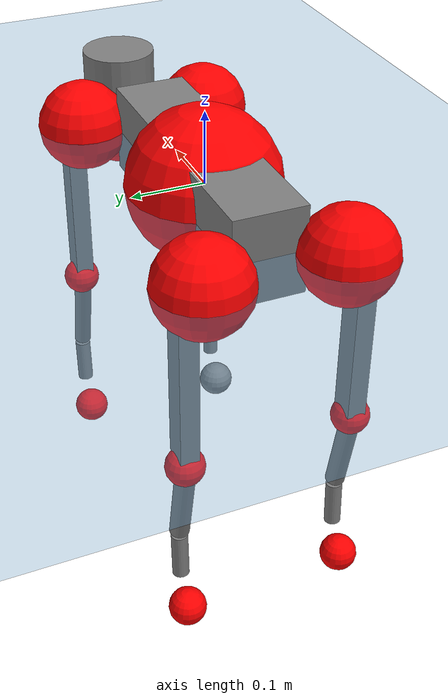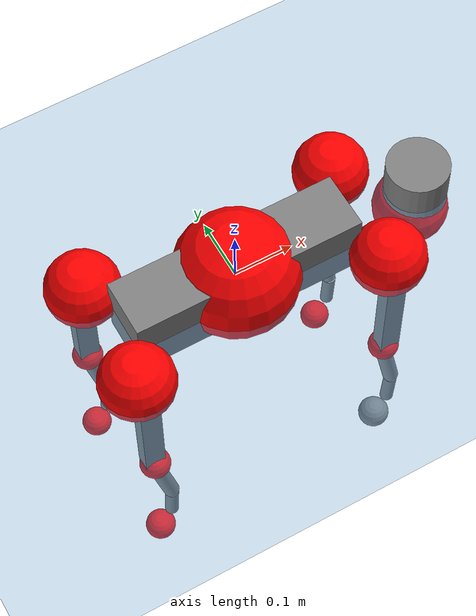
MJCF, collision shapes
<mujoco model="go2">
  <compiler angle="radian" assetdir="assets" balanceinertia="true" inertiafromgeom="false"/>

  <option timestep="0.005" density="1.2" viscosity="2e-05"/>

  <size nkey="1"/>

  <visual>
    <quality shadowsize="8192"/>
    <map shadowclip="0.5"/>
  </visual>

  <default>
    <default class="/">
      <geom contype="0" conaffinity="0" group="1" solref="-1000 -80"/>
      <site size="0.01 0.005 0.005" group="5"/>
      <general forcelimited="true" biastype="affine" gainprm="20" biasprm="0 -20 -0.5"/>
      <default class="go2">
        <joint armature="0.01" damping="0.01" frictionloss="0.2"/>
        <geom condim="1" margin="0.001"/>
        <default class="visual">
          <geom type="mesh" group="2"/>
        </default>
        <default class="collision">
          <geom group="3"/>
          <default class="foot">
            <geom size="0.022 0 0" condim="6" priority="1" friction="0.8 0.02 0.01" solimp="0.015 1 0.022"/>
          </default>
        </default>
        <default class="reward_collision_sphere">
          <geom group="5" rgba="1 0 0 1"/>
        </default>
      </default>
    </default>
  </default>

  <asset>
    <texture type="skybox" colorspace="auto" name="//unnamed_texture_0" builtin="gradient" rgb1="0.95 0.95 0.95" rgb2="0.95 0.95 0.95" width="100" height="600"/>
    <texture type="2d" colorspace="auto" name="texplane" builtin="checker" rgb1="0.345 0.575 0.748" rgb2="0.345 0.575 0.748" markrgb="1 1 1" width="512" height="512"/>
    <material name="MatPlane" class="/" texture="texplane" texuniform="true" texrepeat="2 2" specular="0.9"/>
    <material name="metal" class="/" rgba="0.9 0.95 0.95 1"/>
    <material name="black" class="/" rgba="0 0 0 1"/>
    <material name="white" class="/"/>
    <material name="gray" class="/" rgba="0.671705 0.692426 0.77427 1"/>
    <mesh name="base_0" class="/" file="base_0.obj"/>
    <mesh name="base_1" class="/" file="base_1.obj"/>
    <mesh name="base_2" class="/" file="base_2.obj"/>
    <mesh name="base_3" class="/" file="base_3.obj"/>
    <mesh name="base_4" class="/" file="base_4.obj"/>
    <mesh name="hip_0" class="/" file="hip_0.obj"/>
    <mesh name="hip_1" class="/" file="hip_1.obj"/>
    <mesh name="thigh_0" class="/" file="thigh_0.obj"/>
    <mesh name="thigh_1" class="/" file="thigh_1.obj"/>
    <mesh name="thigh_mirror_0" class="/" file="thigh_mirror_0.obj"/>
    <mesh name="thigh_mirror_1" class="/" file="thigh_mirror_1.obj"/>
    <mesh name="calf_0" class="/" file="calf_0.obj"/>
    <mesh name="calf_1" class="/" file="calf_1.obj"/>
    <mesh name="calf_mirror_0" class="/" file="calf_mirror_0.obj"/>
    <mesh name="calf_mirror_1" class="/" file="calf_mirror_1.obj"/>
    <mesh name="foot" class="/" file="foot.obj"/>
  </asset>

  <worldbody>
    <geom name="floor" class="/" size="100 100 0.125" type="plane" group="0" material="MatPlane"/>
    <light name="toplight_shadow" class="/" pos="0 0 5" dir="0.0990148 0.0990148 -0.990148" type="directional" ambient="0.04 0.04 0.04" diffuse="0.55 0.55 0.55" specular="0.12 0.12 0.12"/>
    <light name="toplight_fill" class="/" pos="0 0 5" dir="0.0990148 0.0990148 -0.990148" type="directional" castshadow="false" ambient="0.04 0.04 0.04" diffuse="0.3 0.3 0.3" specular="0.08 0.08 0.08"/>
    <body name="trunk" childclass="go2" pos="0.00121595 0.000245873 -6.29535e-05" quat="1 -0.000526921 -0.000442762 0.000386668">
      <inertial pos="0.0250983 0.00208251 -0.00437457" quat="5.88887e-06 0.70513 0.00156206 0.709077" mass="8.09835" diaginertia="0.218705 0.0294134 0.0564541"/>
      <joint name="//unnamed_joint_0" type="free" armature="0" damping="0" frictionloss="0"/>
      <geom name="//unnamed_geom_1" class="visual" material="black" mesh="base_0"/>
      <geom name="//unnamed_geom_2" class="visual" material="black" mesh="base_1"/>
      <geom name="//unnamed_geom_3" class="visual" material="black" mesh="base_2"/>
      <geom name="//unnamed_geom_4" class="visual" material="white" mesh="base_3"/>
      <geom name="//unnamed_geom_5" class="visual" material="gray" mesh="base_4"/>
      <geom name="trunk_1" class="collision" size="0.196632 0.0488705 0.0595854" type="box"/>
      <geom name="trunk_2" class="collision" size="0.0522679 0.0470411" pos="0.328857 0 0.0119242" type="cylinder"/>
      <geom name="trunk_3" class="collision" size="0.0491318" pos="0.338088 0 -0.0715451"/>
      <geom name="//unnamed_geom_9" class="reward_collision_sphere" size="0.104536"/>
      <geom name="//unnamed_geom_10" class="reward_collision_sphere" size="0.0627214" pos="0.323088 0 -0.0536588"/>
      <site name="imu" pos="-0.00949726 -0.00970546 0.0400369" size="0.0104536"/>
      <camera name="track" pos="0 -1.57954 0" quat="0.707107 0.707107 0 0" mode="trackcom"/>
      <camera name="ego_camera" pos="0.360012 0 0.0536588" quat="-0.5 -0.5 0.5 0.5"/>
      <body name="FL_hip" pos="0.224659 0.0353774 1.78234e-05" quat="1 -9.9412e-05 0.000693272 0.000147413">
        <inertial pos="-0.00853413 0.000237903 -0.00135171" quat="0.496068 0.496555 0.509259 0.498001" mass="0.798554" diaginertia="0.00187239 0.00018475 0.00119236"/>
        <joint name="FL_hip_joint" pos="0 0 0" axis="0.999988 0.0026953 0.00413323" range="-1.07135 1.0739" armature="0.00873178" damping="0.0300446" frictionloss="0.18504"/>
        <geom name="//unnamed_geom_11" class="visual" material="metal" mesh="hip_0"/>
        <geom name="//unnamed_geom_12" class="visual" material="gray" mesh="hip_1"/>
        <geom name="//unnamed_geom_13" class="collision" size="0.0480864 0.0209071" pos="0 0.0631815 0" quat="0.707107 0.707107 0 0" type="cylinder"/>
        <geom name="//unnamed_geom_14" class="reward_collision_sphere" size="0.0627214" pos="0 0.0552838 0"/>
        <body name="FL_thigh" pos="0.000681659 0.0721144 0.00146565" quat="0.999999 -0.000107032 -0.00162585 7.02459e-05">
          <inertial pos="-0.00232818 -0.0169774 -0.041475" quat="0.832838 0.0800817 -0.00919916 0.547617" mass="1.34146" diaginertia="0.0126776 0.00181238 0.00207684"/>
          <joint name="FL_thigh_joint" pos="0 0 0" axis="0.0130045 0.999762 0.0174958" stiffness="0.0114603" range="-1.6202 3.55047" armature="0.0115201" damping="0" frictionloss="0.230938"/>
          <geom name="//unnamed_geom_15" class="visual" material="metal" mesh="thigh_0"/>
          <geom name="//unnamed_geom_16" class="visual" material="gray" mesh="thigh_1"/>
          <geom name="//unnamed_geom_17" class="collision" size="0.111331 0.0128056 0.0177711" pos="0 0 -0.126993" quat="0.707107 0 0.707107 0" type="box"/>
          <body name="FL_calf" pos="-0.00118513 0.00176298 -0.250094" quat="1 -0.00034243 0.000284374 0.000291193">
            <inertial pos="0.00463886 -0.000466519 -0.171001" quat="0.706045 0.0122728 -0.00144139 0.708059" mass="0.270672" diaginertia="0.0029988 0.000451921 0.000122034"/>
            <joint name="FL_calf_joint" pos="0 0 0" axis="0.0635024 0.997975 -0.00360903" stiffness="0.00341383" range="-2.73101 -0.792069" armature="0.0112834" damping="0.0199796" frictionloss="0.21576"/>
            <geom name="//unnamed_geom_18" class="visual" material="gray" mesh="calf_0"/>
            <geom name="//unnamed_geom_19" class="visual" material="black" mesh="calf_1"/>
            <geom name="FL_calf0" class="collision" size="0.0125443 0.0627214" pos="0.00923108 0 -0.0715451" quat="0.994493 0 -0.104807 0" type="cylinder"/>
            <geom name="//unnamed_geom_21" class="collision" size="0.0114989 0.0339741" pos="0.0230777 0 -0.176478" quat="0.999688 0 0.0249974 0" type="cylinder"/>
            <geom name="//unnamed_geom_22" class="visual" pos="0 0 -0.253985" quat="1 0 0 0" material="black" mesh="foot"/>
            <geom name="FL_foot" class="foot" size="0.016135" pos="-0.00230777 0 -0.253985"/>
            <geom name="//unnamed_geom_24" class="reward_collision_sphere" size="0.0261339"/>
            <geom name="//unnamed_geom_25" class="reward_collision_sphere" size="0.0261339" pos="-0.00230777 0 -0.253985"/>
            <site name="FL_foot" class="foot" pos="-0.00230777 0 -0.253985" size="0.0104536"/>
          </body>
        </body>
      </body>
      <body name="FR_hip" pos="0.222856 -0.035842 -0.00320287" quat="1 0.000171212 -7.33093e-05 4.38788e-05">
        <inertial pos="-0.0081509 -0.00275183 0.000512759" quat="0.499885 0.503618 0.501204 0.495256" mass="0.756372" diaginertia="0.00177903 0.000187445 0.00117174"/>
        <joint name="FR_hip_joint" pos="0 0 0" axis="0.999946 -0.0100696 -0.00242396" range="-0.999873 1.08741" armature="0.0114733" damping="0" frictionloss="0.232044"/>
        <geom name="//unnamed_geom_26" class="visual" pos="0 -3.50772e-09 -1.50453e-07" quat="4.63268e-05 1 0 0" material="metal" mesh="hip_0"/>
        <geom name="//unnamed_geom_27" class="visual" pos="0 -5.68643e-09 3.72129e-07" quat="4.63268e-05 1 0 0" material="gray" mesh="hip_1"/>
        <geom name="//unnamed_geom_28" class="collision" size="0.0480864 0.0209071" pos="0 -0.0631815 0" quat="0.707107 0.707107 0 0" type="cylinder"/>
        <geom name="//unnamed_geom_29" class="reward_collision_sphere" size="0.0627214" pos="0 -0.0552838 0"/>
        <body name="FR_thigh" pos="-0.00198501 -0.0783373 -0.000773376" quat="0.999999 -0.000860596 0.000509078 0.000351753">
          <inertial pos="-0.00429478 0.0196088 -0.0402181" quat="0.546896 -0.0270733 0.0863054 0.8323" mass="1.3769" diaginertia="0.0124657 0.00182332 0.00218499"/>
          <joint name="FR_thigh_joint" pos="0 0 0" axis="0.000981857 -0.999975 0.00700685" range="-3.56767 1.57605" armature="0.0101021" damping="0.00989727" frictionloss="0.157597"/>
          <geom name="//unnamed_geom_30" class="visual" material="metal" mesh="thigh_mirror_0"/>
          <geom name="//unnamed_geom_31" class="visual" material="gray" mesh="thigh_mirror_1"/>
          <geom name="//unnamed_geom_32" class="collision" size="0.111331 0.0128056 0.0177711" pos="0 0 -0.126993" quat="0.707107 0 0.707107 0" type="box"/>
          <body name="FR_calf" pos="-0.00218558 0.00305168 -0.251674" quat="1 0.000135105 0.000277632 0.000130627">
            <inertial pos="0.00816669 0.000373196 -0.171411" quat="0.706621 -0.00536121 -0.00136478 0.707571" mass="0.268167" diaginertia="0.00318587 0.000454959 0.000128716"/>
            <joint name="FR_calf_joint" pos="0 0 0" axis="-0.000274468 -0.999998 0.00189778" stiffness="0.00617461" range="0.817848 2.73281" armature="0.00912708" damping="0.0182198" frictionloss="0.245112"/>
            <geom name="//unnamed_geom_33" class="visual" material="gray" mesh="calf_mirror_0"/>
            <geom name="//unnamed_geom_34" class="visual" material="black" mesh="calf_mirror_1"/>
            <geom name="FR_calf0" class="collision" size="0.0135896 0.0627214" pos="0.0115389 0 -0.0715451" quat="0.995004 0 -0.0998334 0" type="cylinder"/>
            <geom name="//unnamed_geom_36" class="collision" size="0.0114989 0.0339741" pos="0.0230777 0 -0.176478" quat="0.999688 0 0.0249974 0" type="cylinder"/>
            <geom name="//unnamed_geom_37" class="visual" pos="0 0 -0.253985" quat="1 0 0 0" material="black" mesh="foot"/>
            <geom name="FR_foot" class="foot" size="0.0272115" pos="-0.00230777 0 -0.253985"/>
            <geom name="//unnamed_geom_39" class="reward_collision_sphere" size="0.0261339"/>
            <geom name="//unnamed_geom_40" class="reward_collision_sphere" size="0.0261339" pos="-0.00230777 0 -0.253985"/>
            <site name="FR_foot" class="foot" pos="-0.00230777 0 -0.253985" size="0.0104536"/>
          </body>
        </body>
      </body>
      <body name="RL_hip" pos="-0.219386 0.0385264 -0.0013173" quat="0.999999 -0.000374394 0.000990727 0.00076879">
        <inertial pos="0.00811202 -0.000985108 0.000773386" quat="0.505378 0.501641 0.495358 0.497564" mass="0.785566" diaginertia="0.00178896 0.000178539 0.00121142"/>
        <joint name="RL_hip_joint" pos="0 0 0" axis="-0.999982 -0.000313485 0.00596966" range="-0.999222 1.14481" armature="0.01178" damping="0.00162771" frictionloss="0.207711"/>
        <geom name="//unnamed_geom_41" class="visual" pos="3.35683e-10 0 6.58016e-08" quat="4.63268e-05 0 1 0" material="metal" mesh="hip_0"/>
        <geom name="//unnamed_geom_42" class="visual" pos="5.44182e-10 0 5.83567e-08" quat="4.63268e-05 0 1 0" material="gray" mesh="hip_1"/>
        <geom name="//unnamed_geom_43" class="collision" size="0.0480864 0.0209071" pos="0 0.0631815 0" quat="0.707107 0.707107 0 0" type="cylinder"/>
        <geom name="//unnamed_geom_44" class="reward_collision_sphere" size="0.0627214" pos="0 0.0552838 0"/>
        <body name="RL_thigh" pos="-0.000602813 0.0798866 -0.00273701" quat="1 -1.07413e-05 1.72206e-06 -1.28876e-05">
          <inertial pos="-0.00432348 -0.0186876 -0.0409969" quat="0.829432 0.0897983 -0.0191661 0.55101" mass="1.31029" diaginertia="0.0121048 0.00177438 0.002185"/>
          <joint name="RL_thigh_joint" pos="0 0 0" axis="0.00511359 0.999931 0.0105734" range="-0.533187 4.50333" armature="0.00962282" damping="0" frictionloss="0.234483"/>
          <geom name="//unnamed_geom_45" class="visual" material="metal" mesh="thigh_0"/>
          <geom name="//unnamed_geom_46" class="visual" material="gray" mesh="thigh_1"/>
          <geom name="//unnamed_geom_47" class="collision" size="0.111331 0.0128056 0.0177711" pos="0 0 -0.126993" quat="0.707107 0 0.707107 0" type="box"/>
          <body name="RL_calf" pos="-0.000593108 0.000398794 -0.256447" quat="0.999999 0.000412328 0.000784058 -0.000469346">
            <inertial pos="0.00713423 -0.000241251 -0.168871" quat="0.710052 0.00235117 0.0194065 0.703878" mass="0.272694" diaginertia="0.00304355 0.00045451 0.000133211"/>
            <joint name="RL_calf_joint" pos="0 0 0" axis="0.00186598 0.999997 -0.00169599" stiffness="0.00619926" range="-2.70924 -0.842836" armature="0.0107832" damping="0" frictionloss="0.213728"/>
            <geom name="//unnamed_geom_48" class="visual" material="gray" mesh="calf_0"/>
            <geom name="//unnamed_geom_49" class="visual" material="black" mesh="calf_1"/>
            <geom name="RL_calf0" class="collision" size="0.0135896 0.0627214" pos="0.0115389 0 -0.0715451" quat="0.995004 0 -0.0998334 0" type="cylinder"/>
            <geom name="//unnamed_geom_51" class="collision" size="0.0114989 0.0339741" pos="0.0230777 0 -0.176478" quat="0.999688 0 0.0249974 0" type="cylinder"/>
            <geom name="//unnamed_geom_52" class="visual" pos="0 0 -0.253985" quat="1 0 0 0" material="black" mesh="foot"/>
            <geom name="RL_foot" class="foot" size="0.0168111" pos="-0.00230777 0 -0.253985"/>
            <geom name="//unnamed_geom_54" class="reward_collision_sphere" size="0.0261339"/>
            <geom name="//unnamed_geom_55" class="reward_collision_sphere" size="0.0261339" pos="-0.00230777 0 -0.253985"/>
            <site name="RL_foot" class="foot" pos="-0.00230777 0 -0.253985" size="0.0104536"/>
          </body>
        </body>
      </body>
      <body name="RR_hip" pos="-0.221956 -0.0343359 -0.00227378" quat="1 -0.000297913 -0.000144817 9.30649e-05">
        <inertial pos="0.00898096 -0.0010064 -0.00187781" quat="0.501946 0.489557 0.493581 0.51455" mass="0.762121" diaginertia="0.00175225 0.000178582 0.00118299"/>
        <joint name="RR_hip_joint" pos="0 0 0" axis="-0.999998 -0.00168856 -0.000822374" range="-1.01662 0.970246" armature="0.0110283" damping="0.0149093" frictionloss="0.201426"/>
        <geom name="//unnamed_geom_56" class="visual" pos="-3.48289e-10 -3.50772e-09 2.16255e-07" quat="2.14617e-09 4.63268e-05 4.63268e-05 -1" material="metal" mesh="hip_0"/>
        <geom name="//unnamed_geom_57" class="visual" pos="-5.13003e-10 -5.68643e-09 -3.13772e-07" quat="2.14617e-09 4.63268e-05 4.63268e-05 -1" material="gray" mesh="hip_1"/>
        <geom name="//unnamed_geom_58" class="collision" size="0.0480864 0.0209071" pos="0 -0.0631815 0" quat="0.707107 0.707107 0 0" type="cylinder"/>
        <geom name="//unnamed_geom_59" class="reward_collision_sphere" size="0.0627214" pos="0 -0.0552838 0"/>
        <body name="RR_thigh" pos="0.00182428 -0.0771471 -0.00308891" quat="1 -9.15397e-05 0.000132298 8.65971e-05">
          <inertial pos="-0.00437144 0.0153239 -0.0366824" quat="0.552373 -0.0209232 0.0839516 0.829095" mass="1.45252" diaginertia="0.0131256 0.00189523 0.00230782"/>
          <joint name="RR_thigh_joint" pos="0 0 0" axis="0.000166315 -0.999988 0.00490393" range="-4.53225 0.512787" armature="0.00931876" damping="0" frictionloss="0.200216"/>
          <geom name="//unnamed_geom_60" class="visual" material="metal" mesh="thigh_mirror_0"/>
          <geom name="//unnamed_geom_61" class="visual" material="gray" mesh="thigh_mirror_1"/>
          <geom name="//unnamed_geom_62" class="collision" size="0.111331 0.0128056 0.0177711" pos="0 0 -0.126993" quat="0.707107 0 0.707107 0" type="box"/>
          <body name="RR_calf" pos="0.00267336 -0.00322645 -0.250773" quat="1 0.000426754 -0.000314719 -0.000599845">
            <inertial pos="0.00488613 0.000219645 -0.168331" quat="0.708223 -0.00798485 0.00239702 0.70594" mass="0.284978" diaginertia="0.00303945 0.000447763 0.000129832"/>
            <joint name="RR_calf_joint" pos="0 0 0" axis="0.00537769 -0.999984 0.00186308" range="0.794116 2.6754" armature="0.0122448" damping="0.0247022" frictionloss="0.208024"/>
            <geom name="//unnamed_geom_63" class="visual" material="gray" mesh="calf_mirror_0"/>
            <geom name="//unnamed_geom_64" class="visual" material="black" mesh="calf_mirror_1"/>
            <geom name="RR_calf0" class="collision" size="0.0135896 0.0627214" pos="0.0115389 0 -0.0715451" quat="0.995004 0 -0.0998334 0" type="cylinder"/>
            <geom name="//unnamed_geom_66" class="collision" size="0.0114989 0.0339741" pos="0.0230777 0 -0.176478" quat="0.999688 0 0.0249974 0" type="cylinder"/>
            <geom name="//unnamed_geom_67" class="visual" pos="0 0 -0.253985" quat="1 0 0 0" material="black" mesh="foot"/>
            <geom name="RR_foot" class="foot" size="0.0226709" pos="-0.00230777 0 -0.253985"/>
            <geom name="//unnamed_geom_69" class="reward_collision_sphere" size="0.0261339"/>
            <geom name="//unnamed_geom_70" class="reward_collision_sphere" size="0.0261339" pos="-0.00230777 0 -0.253985"/>
            <site name="RR_foot" class="foot" pos="-0.00230777 0 -0.253985" size="0.0104536"/>
          </body>
        </body>
      </body>
    </body>
  </worldbody>

  <contact>
    <pair class="/" geom1="floor" geom2="FL_foot" name="//unnamed_contact_0"/>
    <pair class="/" geom1="floor" geom2="FR_foot" name="//unnamed_contact_1"/>
    <pair class="/" geom1="floor" geom2="RL_foot" name="//unnamed_contact_2"/>
    <pair class="/" geom1="floor" geom2="RR_foot" name="//unnamed_contact_3"/>
  </contact>

  <actuator>
    <general name="FL_hip" class="/" joint="FL_hip_joint" forcerange="-22.6842 22.6842" gainprm="22.3741" biasprm="0 -22.3741 -0.487545"/>
    <general name="FL_thigh" class="/" joint="FL_thigh_joint" forcerange="-23.7241 23.7241" gainprm="22.3741" biasprm="0 -22.3741 -0.487545"/>
    <general name="FL_calf" class="/" joint="FL_calf_joint" forcerange="-42.6863 42.6863" gainprm="22.3741" biasprm="0 -22.3741 -0.487545"/>
    <general name="FR_hip" class="/" joint="FR_hip_joint" forcerange="-24.0472 24.0472" gainprm="22.3741" biasprm="0 -22.3741 -0.487545"/>
    <general name="FR_thigh" class="/" joint="FR_thigh_joint" forcerange="-26.4593 26.4593" gainprm="22.3741" biasprm="0 -22.3741 -0.487545"/>
    <general name="FR_calf" class="/" joint="FR_calf_joint" forcerange="-50.7347 50.7347" gainprm="22.3741" biasprm="0 -22.3741 -0.487545"/>
    <general name="RL_hip" class="/" joint="RL_hip_joint" forcerange="-24.6759 24.6759" gainprm="22.3741" biasprm="0 -22.3741 -0.487545"/>
    <general name="RL_thigh" class="/" joint="RL_thigh_joint" forcerange="-26.7838 26.7838" gainprm="22.3741" biasprm="0 -22.3741 -0.487545"/>
    <general name="RL_calf" class="/" joint="RL_calf_joint" forcerange="-42.9202 42.9202" gainprm="22.3741" biasprm="0 -22.3741 -0.487545"/>
    <general name="RR_hip" class="/" joint="RR_hip_joint" forcerange="-22.464 22.464" gainprm="22.3741" biasprm="0 -22.3741 -0.487545"/>
    <general name="RR_thigh" class="/" joint="RR_thigh_joint" forcerange="-27.8691 27.8691" gainprm="22.3741" biasprm="0 -22.3741 -0.487545"/>
    <general name="RR_calf" class="/" joint="RR_calf_joint" forcerange="-44.7852 44.7852" gainprm="22.3741" biasprm="0 -22.3741 -0.487545"/>
  </actuator>

  <sensor>
    <gyro site="imu" name="imu_angular_velocity"/>
    <velocimeter site="imu" name="imu_linear_velocity"/>
    <framelinvel objtype="site" objname="FL_foot" name="FL_foot_global_linear_velocity"/>
    <framelinvel objtype="site" objname="FR_foot" name="FR_foot_global_linear_velocity"/>
    <framelinvel objtype="site" objname="RL_foot" name="RL_foot_global_linear_velocity"/>
    <framelinvel objtype="site" objname="RR_foot" name="RR_foot_global_linear_velocity"/>
  </sensor>

  <keyframe>
    <key name="home" qpos="0 0 0.325 1 0 0 0 0.1 0.8 -1.5 -0.1 -0.8 1.5 -0.1 0.8 -1.5 0.1 -0.8 1.5"/>
  </keyframe>
</mujoco>
